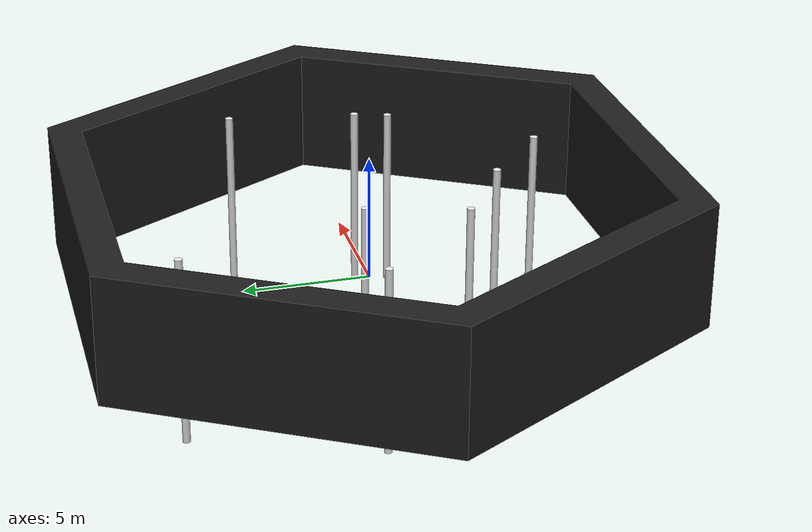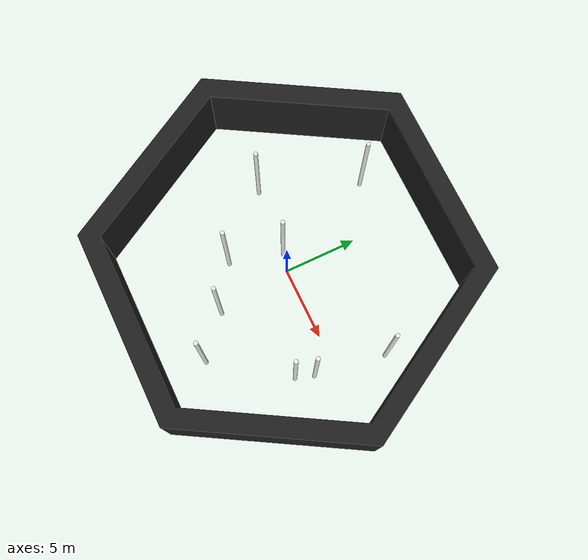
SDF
<sdf version='1.5'>
    <!-- Draw Circle -->
    <model name='ros_symbol'>
      <static>1</static>
      <link name='symbol'>
        <collision name='one_one'>
          <pose>-3.1 -3.1 0.25 0 0 0</pose>
          <geometry>
            <cylinder>
              <radius>0.15</radius>
              <length>7.5</length>
            </cylinder>
          </geometry>
          <max_contacts>10</max_contacts>
          <surface>
            <bounce/>
            <friction>
              <ode/>
            </friction>
            <contact>
              <ode/>
            </contact>
          </surface>
        </collision>

        <visual name='one_one'>
          <pose>-3.1 -3.1 0.25 0 0 0</pose>
          <geometry>
            <cylinder>
              <radius>0.15</radius>
              <length>7.5</length>
            </cylinder>
          </geometry>
          <material>
            <script>
              <uri>file://media/materials/scripts/gazebo.material</uri>
              <name>Gazebo/White</name>
            </script>
          </material>
        </visual>

        <collision name='one_two'>
          <pose>-2.1 0.7 0.25 0 0 0</pose>
          <geometry>
            <cylinder>
              <radius>0.15</radius>
              <length>7.5</length>
            </cylinder>
          </geometry>
          <max_contacts>10</max_contacts>
          <surface>
            <bounce/>
            <friction>
              <ode/>
            </friction>
            <contact>
              <ode/>
            </contact>
          </surface>
        </collision>

        <visual name='one_two'>
          <pose>-2.1 0.7 0.25 0 0 0</pose>
          <geometry>
            <cylinder>
              <radius>0.15</radius>
              <length>7.5</length>
            </cylinder>
          </geometry>
          <material>
            <script>
              <uri>file://media/materials/scripts/gazebo.material</uri>
              <name>Gazebo/White</name>
            </script>
          </material>
        </visual>

        <collision name='one_three'>
          <pose>-7.1 1.1 0.25 0 0 0</pose>
          <geometry>
            <cylinder>
              <radius>0.15</radius>
              <length>7.5</length>
            </cylinder>
          </geometry>
          <max_contacts>10</max_contacts>
          <surface>
            <bounce/>
            <friction>
              <ode/>
            </friction>
            <contact>
              <ode/>
            </contact>
          </surface>
        </collision>

        <visual name='one_three'>
          <pose>-7.1 1.1 0.25 0 0 0</pose>
          <geometry>
            <cylinder>
              <radius>0.15</radius>
              <length>7.5</length>
            </cylinder>
          </geometry>
          <material>
            <script>
              <uri>file://media/materials/scripts/gazebo.material</uri>
              <name>Gazebo/White</name>
            </script>
          </material>
        </visual>

        <collision name='two_one'>
          <pose>0 -5.1 0.25 0 0 0</pose>
          <geometry>
            <cylinder>
              <radius>0.15</radius>
              <length>7.5</length>
            </cylinder>
          </geometry>
          <max_contacts>10</max_contacts>
          <surface>
            <bounce/>
            <friction>
              <ode/>
            </friction>
            <contact>
              <ode/>
            </contact>
          </surface>
        </collision>

        <visual name='two_one'>
          <pose>0 -5.1 0.25 0 0 0</pose>
          <geometry>
            <cylinder>
              <radius>0.15</radius>
              <length>7.5</length>
            </cylinder>
          </geometry>
          <material>
            <script>
              <uri>file://media/materials/scripts/gazebo.material</uri>
              <name>Gazebo/White</name>
            </script>
          </material>
        </visual>

        <collision name='two_two'>
          <pose>6.38 -2.4 0.25 0 0 0</pose>
          <geometry>
            <cylinder>
              <radius>0.15</radius>
              <length>7.5</length>
            </cylinder>
          </geometry>
          <max_contacts>10</max_contacts>
          <surface>
            <bounce/>
            <friction>
              <ode/>
            </friction>
            <contact>
              <ode/>
            </contact>
          </surface>
        </collision>

        <visual name='two_two'>
          <pose>6.38 -2.4 0.25 0 0 0</pose>
          <geometry>
            <cylinder>
              <radius>0.15</radius>
              <length>7.5</length>
            </cylinder>
          </geometry>
          <material>
            <script>
              <uri>file://media/materials/scripts/gazebo.material</uri>
              <name>Gazebo/White</name>
            </script>
          </material>
        </visual>

        <collision name='two_three'>
          <pose>2.7 -7.5 0.25 0 0 0</pose>
          <geometry>
            <cylinder>
              <radius>0.15</radius>
              <length>7.5</length>
            </cylinder>
          </geometry>
          <max_contacts>10</max_contacts>
          <surface>
            <bounce/>
            <friction>
              <ode/>
            </friction>
            <contact>
              <ode/>
            </contact>
          </surface>
        </collision>

        <visual name='two_three'>
          <pose>2.7 -7.5 0.25 0 0 0</pose>
          <geometry>
            <cylinder>
              <radius>0.15</radius>
              <length>7.5</length>
            </cylinder>
          </geometry>
          <material>
            <script>
              <uri>file://media/materials/scripts/gazebo.material</uri>
              <name>Gazebo/White</name>
            </script>
          </material>
        </visual>

        <collision name='three_one'>
          <pose>6.8 -1.1 0.25 0 0 0</pose>
          <geometry>
            <cylinder>
              <radius>0.15</radius>
              <length>7.5</length>
            </cylinder>
          </geometry>
          <max_contacts>10</max_contacts>
          <surface>
            <bounce/>
            <friction>
              <ode/>
            </friction>
            <contact>
              <ode/>
            </contact>
          </surface>
        </collision>

        <visual name='three_one'>
          <pose>6.8 -1.1 0.25 0 0 0</pose>
          <geometry>
            <cylinder>
              <radius>0.15</radius>
              <length>7.5</length>
            </cylinder>
          </geometry>
          <material>
            <script>
              <uri>file://media/materials/scripts/gazebo.material</uri>
              <name>Gazebo/White</name>
            </script>
          </material>
        </visual>

        <collision name='three_two'>
          <pose>7.6 3.98 0.25 0 0 0</pose>
          <geometry>
            <cylinder>
              <radius>0.15</radius>
              <length>7.5</length>
            </cylinder>
          </geometry>
          <max_contacts>10</max_contacts>
          <surface>
            <bounce/>
            <friction>
              <ode/>
            </friction>
            <contact>
              <ode/>
            </contact>
          </surface>
        </collision>

        <visual name='three_two'>
          <pose>7.6 3.98 0.25 0 0 0</pose>
          <geometry>
            <cylinder>
              <radius>0.15</radius>
              <length>7.5</length>
            </cylinder>
          </geometry>
          <material>
            <script>
              <uri>file://media/materials/scripts/gazebo.material</uri>
              <name>Gazebo/White</name>
            </script>
          </material>
        </visual>

        <collision name='three_three'>
          <pose>-4.56 8.1 0.25 0 0 0</pose>
          <geometry>
            <cylinder>
              <radius>0.15</radius>
              <length>7.5</length>
            </cylinder>
          </geometry>
          <max_contacts>10</max_contacts>
          <surface>
            <bounce/>
            <friction>
              <ode/>
            </friction>
            <contact>
              <ode/>
            </contact>
          </surface>
        </collision>

        <visual name='three_three'>
          <pose>-4.56 8.1 0.25 0 0 0</pose>
          <geometry>
            <cylinder>
              <radius>0.15</radius>
              <length>7.5</length>
            </cylinder>
          </geometry>
          <material>
            <script>
              <uri>file://media/materials/scripts/gazebo.material</uri>
              <name>Gazebo/White</name>
            </script>
          </material>
        </visual>

        <!-- Draw Wall -->
        <collision name='body'>
        <pose>0 0 -0.3 0 0 -1.5708</pose>
        <geometry>
          <mesh>
            <uri>model://turtlebot3_world/meshes/wall.dae</uri>
            <scale>1 1 1</scale>
          </mesh>
        </geometry>
        <max_contacts>10</max_contacts>
        <surface>
          <bounce/>
          <friction>
            <ode/>
          </friction>
          <contact>
            <ode/>
          </contact>
        </surface>
      </collision>

      <visual name='body'>
        <pose>0 0 -0.3 0 0 -1.5708</pose>
        <geometry>
          <mesh>
            <uri>model://turtlebot3_world/meshes/wall.dae</uri>
            <scale>1 1 1</scale>
          </mesh>
        </geometry>
        <material>
          <script>
            <uri>file://media/materials/scripts/gazebo.material</uri>
            <name>Gazebo/FlatBlack</name>
          </script>
        </material>
      </visual>
    </link>
  </model>
</sdf>
